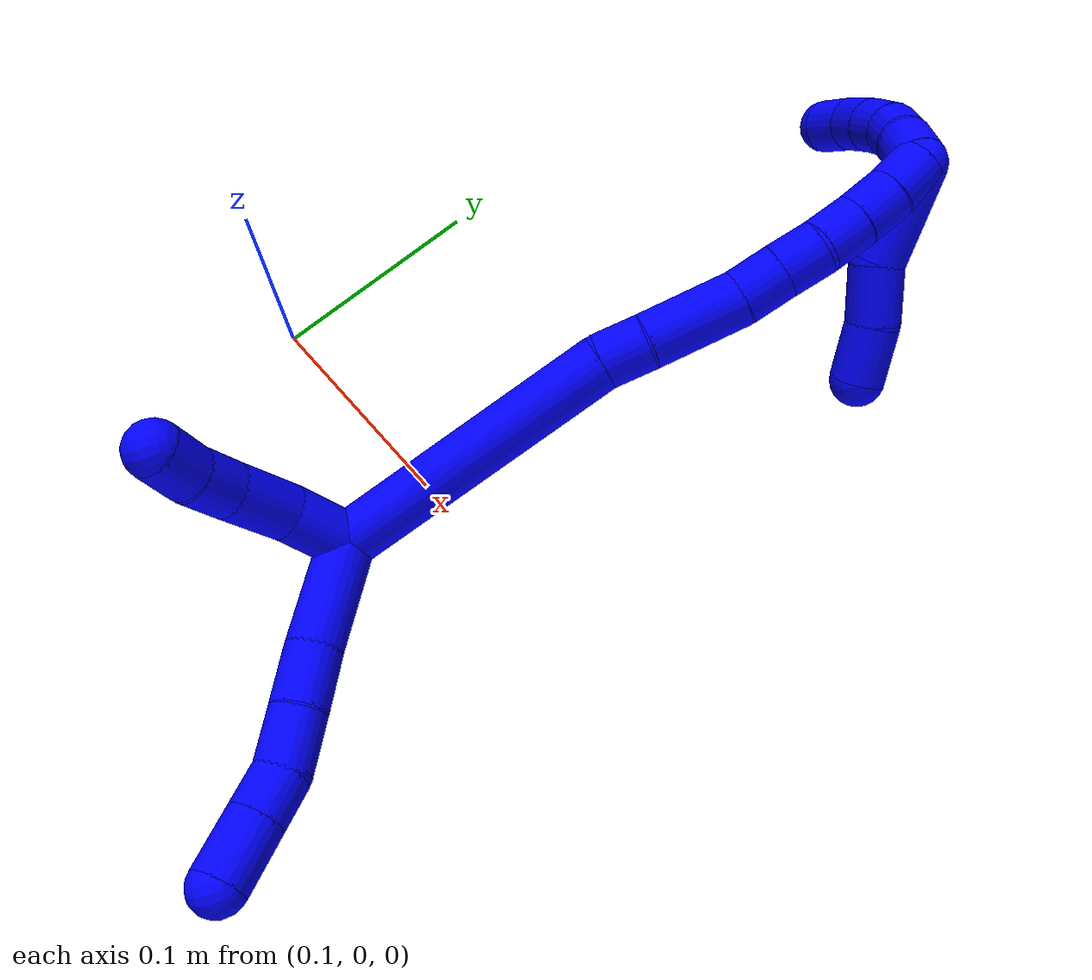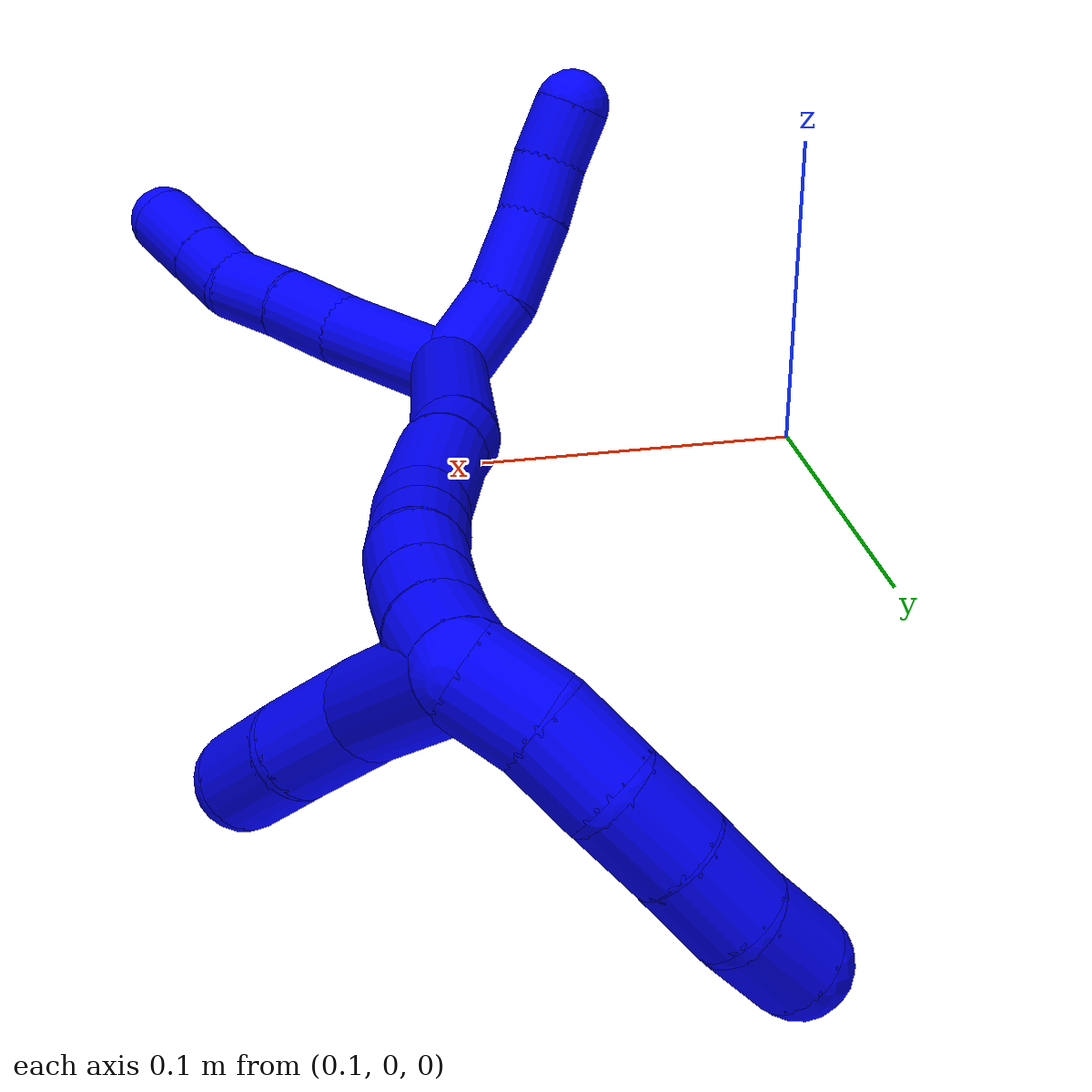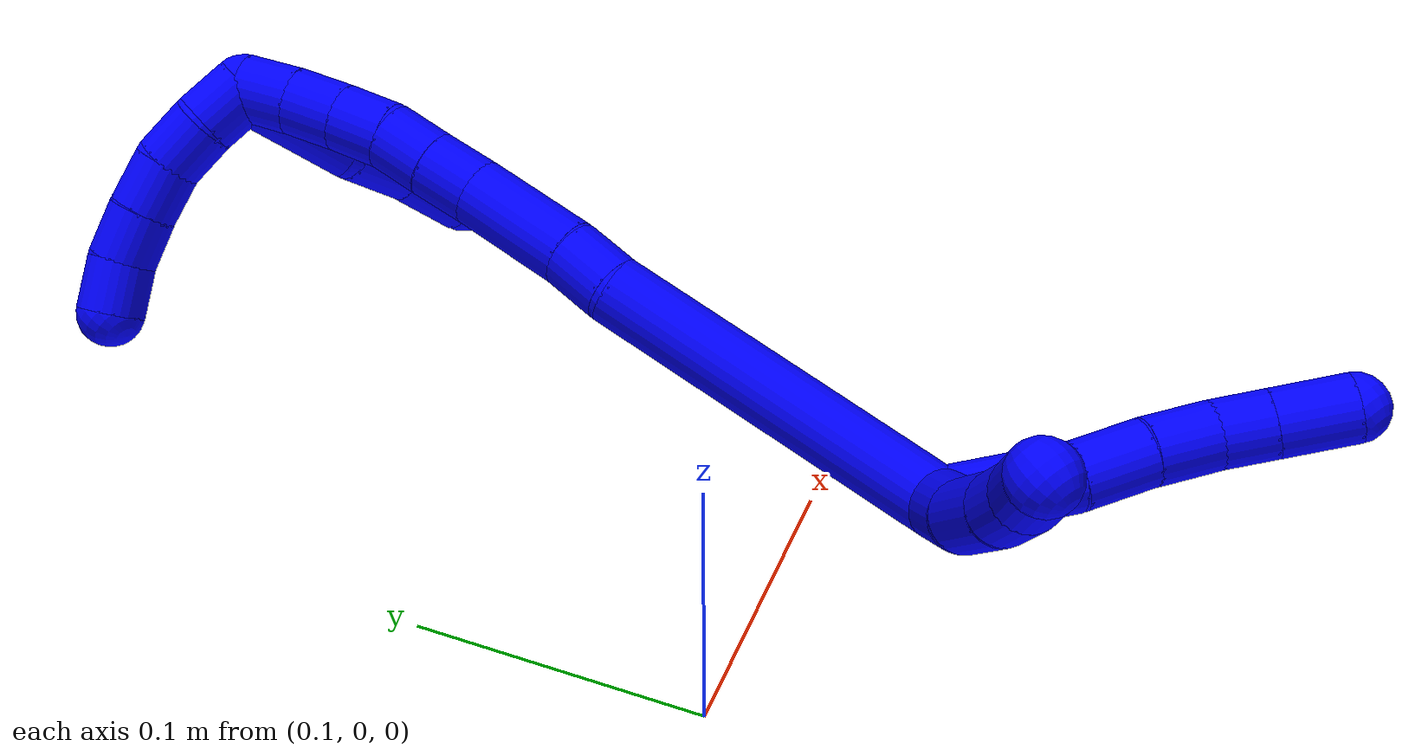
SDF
<sdf version="1.7">
 <world name="default">
  <model name="1">
   <static>0</static>
   <link name="1">
    <collision name="collision-cylinder-e_1_2_8">
     <pose>0.003321 -0.022284 -0.009219 1.96307 0.136866 0.204346</pose>
     <geometry><cylinder><radius>0.0125</radius><length>0.048686</length></cylinder></geometry>
     <surface>
      <friction><ode><mu>1.16</mu><mu2>1.16</mu2><slip1>0</slip1><slip2>0</slip2></ode></friction>
      <contact><ode><kp>1e+06</kp><kd>1</kd><max_vel>0</max_vel><min_depth>0.001</min_depth></ode></contact>
     </surface>
    </collision>
    <visual name="visual-cylinder-e_1_2_8">
     <pose>0.003321 -0.022284 -0.009219 1.96307 0.136866 0.204346</pose>
     <geometry><cylinder><radius>0.0125</radius><length>0.048686</length></cylinder></geometry>
     <material><ambient>0 0 1 1</ambient></material>
    </visual>
    <collision name="collision-cylinder-e_2_8_9">
     <pose>0.007488 -0.057507 -0.022175 1.85198 0.06267 0.083312</pose>
     <geometry><cylinder><radius>0.0125</radius><length>0.026989</length></cylinder></geometry>
     <surface>
      <friction><ode><mu>1.16</mu><mu2>1.16</mu2><slip1>0</slip1><slip2>0</slip2></ode></friction>
      <contact><ode><kp>1e+06</kp><kd>1</kd><max_vel>0</max_vel><min_depth>0.001</min_depth></ode></contact>
     </surface>
    </collision>
    <visual name="visual-cylinder-e_2_8_9">
     <pose>0.007488 -0.057507 -0.022175 1.85198 0.06267 0.083312</pose>
     <geometry><cylinder><radius>0.0125</radius><length>0.026989</length></cylinder></geometry>
     <material><ambient>0 0 1 1</ambient></material>
    </visual>
    <collision name="collision-cylinder-e_3_9_10">
     <pose>0.009963 -0.082434 -0.030092 1.90625 0.127661 0.179464</pose>
     <geometry><cylinder><radius>0.0125</radius><length>0.025601</length></cylinder></geometry>
     <surface>
      <friction><ode><mu>1.16</mu><mu2>1.16</mu2><slip1>0</slip1><slip2>0</slip2></ode></friction>
      <contact><ode><kp>1e+06</kp><kd>1</kd><max_vel>0</max_vel><min_depth>0.001</min_depth></ode></contact>
     </surface>
    </collision>
    <visual name="visual-cylinder-e_3_9_10">
     <pose>0.009963 -0.082434 -0.030092 1.90625 0.127661 0.179464</pose>
     <geometry><cylinder><radius>0.0125</radius><length>0.025601</length></cylinder></geometry>
     <material><ambient>0 0 1 1</ambient></material>
    </visual>
    <collision name="collision-cylinder-e_4_10_11">
     <pose>0.010424 -0.103335 -0.03902 2.06032 -0.115226 -0.191573</pose>
     <geometry><cylinder><radius>0.0125</radius><length>0.020332</length></cylinder></geometry>
     <surface>
      <friction><ode><mu>1.16</mu><mu2>1.16</mu2><slip1>0</slip1><slip2>0</slip2></ode></friction>
      <contact><ode><kp>1e+06</kp><kd>1</kd><max_vel>0</max_vel><min_depth>0.001</min_depth></ode></contact>
     </surface>
    </collision>
    <visual name="visual-cylinder-e_4_10_11">
     <pose>0.010424 -0.103335 -0.03902 2.06032 -0.115226 -0.191573</pose>
     <geometry><cylinder><radius>0.0125</radius><length>0.020332</length></cylinder></geometry>
     <material><ambient>0 0 1 1</ambient></material>
    </visual>
    <collision name="collision-cylinder-e_5_11_6">
     <pose>0.007626 -0.124697 -0.050394 2.05987 -0.114974 -0.191059</pose>
     <geometry><cylinder><radius>0.0125</radius><length>0.028392</length></cylinder></geometry>
     <surface>
      <friction><ode><mu>1.16</mu><mu2>1.16</mu2><slip1>0</slip1><slip2>0</slip2></ode></friction>
      <contact><ode><kp>1e+06</kp><kd>1</kd><max_vel>0</max_vel><min_depth>0.001</min_depth></ode></contact>
     </surface>
    </collision>
    <visual name="visual-cylinder-e_5_11_6">
     <pose>0.007626 -0.124697 -0.050394 2.05987 -0.114974 -0.191059</pose>
     <geometry><cylinder><radius>0.0125</radius><length>0.028392</length></cylinder></geometry>
     <material><ambient>0 0 1 1</ambient></material>
    </visual>
    <collision name="collision-cylinder-e_1_2_12">
     <pose>-0.012737 0.002031 -0.007624 -2.88125 -1.01618 2.67979</pose>
     <geometry><cylinder><radius>0.0125</radius><length>0.029965</length></cylinder></geometry>
     <surface>
      <friction><ode><mu>1.16</mu><mu2>1.16</mu2><slip1>0</slip1><slip2>0</slip2></ode></friction>
      <contact><ode><kp>1e+06</kp><kd>1</kd><max_vel>0</max_vel><min_depth>0.001</min_depth></ode></contact>
     </surface>
    </collision>
    <visual name="visual-cylinder-e_1_2_12">
     <pose>-0.012737 0.002031 -0.007624 -2.88125 -1.01618 2.67979</pose>
     <geometry><cylinder><radius>0.0125</radius><length>0.029965</length></cylinder></geometry>
     <material><ambient>0 0 1 1</ambient></material>
    </visual>
    <collision name="collision-cylinder-e_2_12_13">
     <pose>-0.039075 0.002727 -0.021213 2.92137 -1.14842 -2.80307</pose>
     <geometry><cylinder><radius>0.0125</radius><length>0.029824</length></cylinder></geometry>
     <surface>
      <friction><ode><mu>1.16</mu><mu2>1.16</mu2><slip1>0</slip1><slip2>0</slip2></ode></friction>
      <contact><ode><kp>1e+06</kp><kd>1</kd><max_vel>0</max_vel><min_depth>0.001</min_depth></ode></contact>
     </surface>
    </collision>
    <visual name="visual-cylinder-e_2_12_13">
     <pose>-0.039075 0.002727 -0.021213 2.92137 -1.14842 -2.80307</pose>
     <geometry><cylinder><radius>0.0125</radius><length>0.029824</length></cylinder></geometry>
     <material><ambient>0 0 1 1</ambient></material>
    </visual>
    <collision name="collision-cylinder-e_3_13_14">
     <pose>-0.062122 -0.000179 -0.030127 2.65221 -1.2309 -2.46265</pose>
     <geometry><cylinder><radius>0.0125</radius><length>0.020039</length></cylinder></geometry>
     <surface>
      <friction><ode><mu>1.16</mu><mu2>1.16</mu2><slip1>0</slip1><slip2>0</slip2></ode></friction>
      <contact><ode><kp>1e+06</kp><kd>1</kd><max_vel>0</max_vel><min_depth>0.001</min_depth></ode></contact>
     </surface>
    </collision>
    <visual name="visual-cylinder-e_3_13_14">
     <pose>-0.062122 -0.000179 -0.030127 2.65221 -1.2309 -2.46265</pose>
     <geometry><cylinder><radius>0.0125</radius><length>0.020039</length></cylinder></geometry>
     <material><ambient>0 0 1 1</ambient></material>
    </visual>
    <collision name="collision-cylinder-e_4_14_5">
     <pose>-0.081463 -0.001985 -0.03502 3.02087 -1.37535 -2.99471</pose>
     <geometry><cylinder><radius>0.0125</radius><length>0.020173</length></cylinder></geometry>
     <surface>
      <friction><ode><mu>1.16</mu><mu2>1.16</mu2><slip1>0</slip1><slip2>0</slip2></ode></friction>
      <contact><ode><kp>1e+06</kp><kd>1</kd><max_vel>0</max_vel><min_depth>0.001</min_depth></ode></contact>
     </surface>
    </collision>
    <visual name="visual-cylinder-e_4_14_5">
     <pose>-0.081463 -0.001985 -0.03502 3.02087 -1.37535 -2.99471</pose>
     <geometry><cylinder><radius>0.0125</radius><length>0.020173</length></cylinder></geometry>
     <material><ambient>0 0 1 1</ambient></material>
    </visual>
    <collision name="collision-cylinder-e_1_2_15">
     <pose>-0.007327 0.021881 0.063089 -0.333838 -0.109282 0.01843</pose>
     <geometry><cylinder><radius>0.0125</radius><length>0.134353</length></cylinder></geometry>
     <surface>
      <friction><ode><mu>1.16</mu><mu2>1.16</mu2><slip1>0</slip1><slip2>0</slip2></ode></friction>
      <contact><ode><kp>1e+06</kp><kd>1</kd><max_vel>0</max_vel><min_depth>0.001</min_depth></ode></contact>
     </surface>
    </collision>
    <visual name="visual-cylinder-e_1_2_15">
     <pose>-0.007327 0.021881 0.063089 -0.333838 -0.109282 0.01843</pose>
     <geometry><cylinder><radius>0.0125</radius><length>0.134353</length></cylinder></geometry>
     <material><ambient>0 0 1 1</ambient></material>
    </visual>
    <collision name="collision-cylinder-e_2_15_16">
     <pose>-0.01451 0.04567 0.136553 -0.181977 0.01361 -0.001242</pose>
     <geometry><cylinder><radius>0.0125</radius><length>0.021098</length></cylinder></geometry>
     <surface>
      <friction><ode><mu>1.16</mu><mu2>1.16</mu2><slip1>0</slip1><slip2>0</slip2></ode></friction>
      <contact><ode><kp>1e+06</kp><kd>1</kd><max_vel>0</max_vel><min_depth>0.001</min_depth></ode></contact>
     </surface>
    </collision>
    <visual name="visual-cylinder-e_2_15_16">
     <pose>-0.01451 0.04567 0.136553 -0.181977 0.01361 -0.001242</pose>
     <geometry><cylinder><radius>0.0125</radius><length>0.021098</length></cylinder></geometry>
     <material><ambient>0 0 1 1</ambient></material>
    </visual>
    <collision name="collision-cylinder-e_3_16_17">
     <pose>-0.012816 0.053267 0.167988 -0.26378 0.070945 -0.009415</pose>
     <geometry><cylinder><radius>0.0125</radius><length>0.043742</length></cylinder></geometry>
     <surface>
      <friction><ode><mu>1.16</mu><mu2>1.16</mu2><slip1>0</slip1><slip2>0</slip2></ode></friction>
      <contact><ode><kp>1e+06</kp><kd>1</kd><max_vel>0</max_vel><min_depth>0.001</min_depth></ode></contact>
     </surface>
    </collision>
    <visual name="visual-cylinder-e_3_16_17">
     <pose>-0.012816 0.053267 0.167988 -0.26378 0.070945 -0.009415</pose>
     <geometry><cylinder><radius>0.0125</radius><length>0.043742</length></cylinder></geometry>
     <material><ambient>0 0 1 1</ambient></material>
    </visual>
    <collision name="collision-cylinder-e_4_17_18">
     <pose>-0.011803 0.062395 0.198822 -0.338418 -0.051885 0.008866</pose>
     <geometry><cylinder><radius>0.0125</radius><length>0.020748</length></cylinder></geometry>
     <surface>
      <friction><ode><mu>1.16</mu><mu2>1.16</mu2><slip1>0</slip1><slip2>0</slip2></ode></friction>
      <contact><ode><kp>1e+06</kp><kd>1</kd><max_vel>0</max_vel><min_depth>0.001</min_depth></ode></contact>
     </surface>
    </collision>
    <visual name="visual-cylinder-e_4_17_18">
     <pose>-0.011803 0.062395 0.198822 -0.338418 -0.051885 0.008866</pose>
     <geometry><cylinder><radius>0.0125</radius><length>0.020748</length></cylinder></geometry>
     <material><ambient>0 0 1 1</ambient></material>
    </visual>
    <collision name="collision-cylinder-e_5_18_19">
     <pose>-0.01274 0.068892 0.218113 -0.3108 -0.039825 0.00624</pose>
     <geometry><cylinder><radius>0.0125</radius><length>0.02001</length></cylinder></geometry>
     <surface>
      <friction><ode><mu>1.16</mu><mu2>1.16</mu2><slip1>0</slip1><slip2>0</slip2></ode></friction>
      <contact><ode><kp>1e+06</kp><kd>1</kd><max_vel>0</max_vel><min_depth>0.001</min_depth></ode></contact>
     </surface>
    </collision>
    <visual name="visual-cylinder-e_5_18_19">
     <pose>-0.01274 0.068892 0.218113 -0.3108 -0.039825 0.00624</pose>
     <geometry><cylinder><radius>0.0125</radius><length>0.02001</length></cylinder></geometry>
     <material><ambient>0 0 1 1</ambient></material>
    </visual>
    <collision name="collision-cylinder-e_6_19_20">
     <pose>-0.012703 0.076583 0.236493 -0.481781 0.043492 -0.010686</pose>
     <geometry><cylinder><radius>0.0125</radius><length>0.02002</length></cylinder></geometry>
     <surface>
      <friction><ode><mu>1.16</mu><mu2>1.16</mu2><slip1>0</slip1><slip2>0</slip2></ode></friction>
      <contact><ode><kp>1e+06</kp><kd>1</kd><max_vel>0</max_vel><min_depth>0.001</min_depth></ode></contact>
     </surface>
    </collision>
    <visual name="visual-cylinder-e_6_19_20">
     <pose>-0.012703 0.076583 0.236493 -0.481781 0.043492 -0.010686</pose>
     <geometry><cylinder><radius>0.0125</radius><length>0.02002</length></cylinder></geometry>
     <material><ambient>0 0 1 1</ambient></material>
    </visual>
    <collision name="collision-cylinder-e_7_20_21">
     <pose>-0.012087 0.086288 0.253976 -0.531776 0.018073 -0.004922</pose>
     <geometry><cylinder><radius>0.0125</radius><length>0.020005</length></cylinder></geometry>
     <surface>
      <friction><ode><mu>1.16</mu><mu2>1.16</mu2><slip1>0</slip1><slip2>0</slip2></ode></friction>
      <contact><ode><kp>1e+06</kp><kd>1</kd><max_vel>0</max_vel><min_depth>0.001</min_depth></ode></contact>
     </surface>
    </collision>
    <visual name="visual-cylinder-e_7_20_21">
     <pose>-0.012087 0.086288 0.253976 -0.531776 0.018073 -0.004922</pose>
     <geometry><cylinder><radius>0.0125</radius><length>0.020005</length></cylinder></geometry>
     <material><ambient>0 0 1 1</ambient></material>
    </visual>
    <collision name="collision-cylinder-e_8_21_1">
     <pose>-0.012096 0.097262 0.270679 -0.630682 -0.018991 0.006195</pose>
     <geometry><cylinder><radius>0.0125</radius><length>0.020022</length></cylinder></geometry>
     <surface>
      <friction><ode><mu>1.16</mu><mu2>1.16</mu2><slip1>0</slip1><slip2>0</slip2></ode></friction>
      <contact><ode><kp>1e+06</kp><kd>1</kd><max_vel>0</max_vel><min_depth>0.001</min_depth></ode></contact>
     </surface>
    </collision>
    <visual name="visual-cylinder-e_8_21_1">
     <pose>-0.012096 0.097262 0.270679 -0.630682 -0.018991 0.006195</pose>
     <geometry><cylinder><radius>0.0125</radius><length>0.020022</length></cylinder></geometry>
     <material><ambient>0 0 1 1</ambient></material>
    </visual>
    <collision name="collision-cylinder-e_1_1_22">
     <pose>-0.010475 0.112966 0.277966 -1.65198 0.182097 -0.197419</pose>
     <geometry><cylinder><radius>0.0125</radius><length>0.02</length></cylinder></geometry>
     <surface>
      <friction><ode><mu>1.16</mu><mu2>1.16</mu2><slip1>0</slip1><slip2>0</slip2></ode></friction>
      <contact><ode><kp>1e+06</kp><kd>1</kd><max_vel>0</max_vel><min_depth>0.001</min_depth></ode></contact>
     </surface>
    </collision>
    <visual name="visual-cylinder-e_1_1_22">
     <pose>-0.010475 0.112966 0.277966 -1.65198 0.182097 -0.197419</pose>
     <geometry><cylinder><radius>0.0125</radius><length>0.02</length></cylinder></geometry>
     <material><ambient>0 0 1 1</ambient></material>
    </visual>
    <collision name="collision-cylinder-e_2_22_23">
     <pose>-0.004986 0.132037 0.27642 -1.65132 0.376643 -0.407425</pose>
     <geometry><cylinder><radius>0.0125</radius><length>0.02</length></cylinder></geometry>
     <surface>
      <friction><ode><mu>1.16</mu><mu2>1.16</mu2><slip1>0</slip1><slip2>0</slip2></ode></friction>
      <contact><ode><kp>1e+06</kp><kd>1</kd><max_vel>0</max_vel><min_depth>0.001</min_depth></ode></contact>
     </surface>
    </collision>
    <visual name="visual-cylinder-e_2_22_23">
     <pose>-0.004986 0.132037 0.27642 -1.65132 0.376643 -0.407425</pose>
     <geometry><cylinder><radius>0.0125</radius><length>0.02</length></cylinder></geometry>
     <material><ambient>0 0 1 1</ambient></material>
    </visual>
    <collision name="collision-cylinder-e_3_23_24">
     <pose>0.002941 0.149793 0.272522 -1.92623 0.438909 -0.620699</pose>
     <geometry><cylinder><radius>0.0125</radius><length>0.02</length></cylinder></geometry>
     <surface>
      <friction><ode><mu>1.16</mu><mu2>1.16</mu2><slip1>0</slip1><slip2>0</slip2></ode></friction>
      <contact><ode><kp>1e+06</kp><kd>1</kd><max_vel>0</max_vel><min_depth>0.001</min_depth></ode></contact>
     </surface>
    </collision>
    <visual name="visual-cylinder-e_3_23_24">
     <pose>0.002941 0.149793 0.272522 -1.92623 0.438909 -0.620699</pose>
     <geometry><cylinder><radius>0.0125</radius><length>0.02</length></cylinder></geometry>
     <material><ambient>0 0 1 1</ambient></material>
    </visual>
    <collision name="collision-cylinder-e_4_24_25">
     <pose>0.011891 0.166309 0.265708 -1.99881 0.489361 -0.740845</pose>
     <geometry><cylinder><radius>0.0125</radius><length>0.02</length></cylinder></geometry>
     <surface>
      <friction><ode><mu>1.16</mu><mu2>1.16</mu2><slip1>0</slip1><slip2>0</slip2></ode></friction>
      <contact><ode><kp>1e+06</kp><kd>1</kd><max_vel>0</max_vel><min_depth>0.001</min_depth></ode></contact>
     </surface>
    </collision>
    <visual name="visual-cylinder-e_4_24_25">
     <pose>0.011891 0.166309 0.265708 -1.99881 0.489361 -0.740845</pose>
     <geometry><cylinder><radius>0.0125</radius><length>0.02</length></cylinder></geometry>
     <material><ambient>0 0 1 1</ambient></material>
    </visual>
    <collision name="collision-cylinder-e_5_25_4">
     <pose>0.020836 0.181393 0.256367 -2.24853 0.438356 -0.870937</pose>
     <geometry><cylinder><radius>0.0125</radius><length>0.02</length></cylinder></geometry>
     <surface>
      <friction><ode><mu>1.16</mu><mu2>1.16</mu2><slip1>0</slip1><slip2>0</slip2></ode></friction>
      <contact><ode><kp>1e+06</kp><kd>1</kd><max_vel>0</max_vel><min_depth>0.001</min_depth></ode></contact>
     </surface>
    </collision>
    <visual name="visual-cylinder-e_5_25_4">
     <pose>0.020836 0.181393 0.256367 -2.24853 0.438356 -0.870937</pose>
     <geometry><cylinder><radius>0.0125</radius><length>0.02</length></cylinder></geometry>
     <material><ambient>0 0 1 1</ambient></material>
    </visual>
    <collision name="collision-cylinder-e_1_1_26">
     <pose>0.001706 0.091827 0.264605 2.46638 0.657093 1.54148</pose>
     <geometry><cylinder><radius>0.0125</radius><length>0.045816</length></cylinder></geometry>
     <surface>
      <friction><ode><mu>1.16</mu><mu2>1.16</mu2><slip1>0</slip1><slip2>0</slip2></ode></friction>
      <contact><ode><kp>1e+06</kp><kd>1</kd><max_vel>0</max_vel><min_depth>0.001</min_depth></ode></contact>
     </surface>
    </collision>
    <visual name="visual-cylinder-e_1_1_26">
     <pose>0.001706 0.091827 0.264605 2.46638 0.657093 1.54148</pose>
     <geometry><cylinder><radius>0.0125</radius><length>0.045816</length></cylinder></geometry>
     <material><ambient>0 0 1 1</ambient></material>
    </visual>
    <collision name="collision-cylinder-e_2_26_27">
     <pose>0.02609 0.072752 0.246146 2.0781 0.865198 1.33102</pose>
     <geometry><cylinder><radius>0.0125</radius><length>0.027302</length></cylinder></geometry>
     <surface>
      <friction><ode><mu>1.16</mu><mu2>1.16</mu2><slip1>0</slip1><slip2>0</slip2></ode></friction>
      <contact><ode><kp>1e+06</kp><kd>1</kd><max_vel>0</max_vel><min_depth>0.001</min_depth></ode></contact>
     </surface>
    </collision>
    <visual name="visual-cylinder-e_2_26_27">
     <pose>0.02609 0.072752 0.246146 2.0781 0.865198 1.33102</pose>
     <geometry><cylinder><radius>0.0125</radius><length>0.027302</length></cylinder></geometry>
     <material><ambient>0 0 1 1</ambient></material>
    </visual>
    <collision name="collision-cylinder-e_3_27_3">
     <pose>0.046072 0.058376 0.235165 2.35937 0.794435 1.58801</pose>
     <geometry><cylinder><radius>0.0125</radius><length>0.026882</length></cylinder></geometry>
     <surface>
      <friction><ode><mu>1.16</mu><mu2>1.16</mu2><slip1>0</slip1><slip2>0</slip2></ode></friction>
      <contact><ode><kp>1e+06</kp><kd>1</kd><max_vel>0</max_vel><min_depth>0.001</min_depth></ode></contact>
     </surface>
    </collision>
    <visual name="visual-cylinder-e_3_27_3">
     <pose>0.046072 0.058376 0.235165 2.35937 0.794435 1.58801</pose>
     <geometry><cylinder><radius>0.0125</radius><length>0.026882</length></cylinder></geometry>
     <material><ambient>0 0 1 1</ambient></material>
    </visual>
    <collision name="collision-sphere-3">
     <pose>0.055661 0.051738 0.228484 0 -0 0</pose>
     <geometry><sphere><radius>0.0125</radius></sphere></geometry>
     <surface>
      <friction><ode><mu>1.16</mu><mu2>1.16</mu2><slip1>0</slip1><slip2>0</slip2></ode></friction>
      <contact><ode><kp>1e+06</kp><kd>1</kd><max_vel>0</max_vel><min_depth>0.001</min_depth></ode></contact>
     </surface>
    </collision>
    <visual name="visual-sphere-3">
     <pose>0.055661 0.051738 0.228484 0 -0 0</pose>
     <geometry><sphere><radius>0.0125</radius></sphere></geometry>
     <material><ambient>0 0 1 1</ambient></material>
    </visual>
    <collision name="collision-sphere-27">
     <pose>0.036482 0.065014 0.241846 0 -0 0</pose>
     <geometry><sphere><radius>0.0125</radius></sphere></geometry>
     <surface>
      <friction><ode><mu>1.16</mu><mu2>1.16</mu2><slip1>0</slip1><slip2>0</slip2></ode></friction>
      <contact><ode><kp>1e+06</kp><kd>1</kd><max_vel>0</max_vel><min_depth>0.001</min_depth></ode></contact>
     </surface>
    </collision>
    <visual name="visual-sphere-27">
     <pose>0.036482 0.065014 0.241846 0 -0 0</pose>
     <geometry><sphere><radius>0.0125</radius></sphere></geometry>
     <material><ambient>0 0 1 1</ambient></material>
    </visual>
    <collision name="collision-sphere-26">
     <pose>0.015699 0.080489 0.250447 0 -0 0</pose>
     <geometry><sphere><radius>0.0125</radius></sphere></geometry>
     <surface>
      <friction><ode><mu>1.16</mu><mu2>1.16</mu2><slip1>0</slip1><slip2>0</slip2></ode></friction>
      <contact><ode><kp>1e+06</kp><kd>1</kd><max_vel>0</max_vel><min_depth>0.001</min_depth></ode></contact>
     </surface>
    </collision>
    <visual name="visual-sphere-26">
     <pose>0.015699 0.080489 0.250447 0 -0 0</pose>
     <geometry><sphere><radius>0.0125</radius></sphere></geometry>
     <material><ambient>0 0 1 1</ambient></material>
    </visual>
    <collision name="collision-sphere-4">
     <pose>0.025081 0.188446 0.25069 0 -0 0</pose>
     <geometry><sphere><radius>0.0125</radius></sphere></geometry>
     <surface>
      <friction><ode><mu>1.16</mu><mu2>1.16</mu2><slip1>0</slip1><slip2>0</slip2></ode></friction>
      <contact><ode><kp>1e+06</kp><kd>1</kd><max_vel>0</max_vel><min_depth>0.001</min_depth></ode></contact>
     </surface>
    </collision>
    <visual name="visual-sphere-4">
     <pose>0.025081 0.188446 0.25069 0 -0 0</pose>
     <geometry><sphere><radius>0.0125</radius></sphere></geometry>
     <material><ambient>0 0 1 1</ambient></material>
    </visual>
    <collision name="collision-sphere-25">
     <pose>0.016592 0.174339 0.262045 0 -0 0</pose>
     <geometry><sphere><radius>0.0125</radius></sphere></geometry>
     <surface>
      <friction><ode><mu>1.16</mu><mu2>1.16</mu2><slip1>0</slip1><slip2>0</slip2></ode></friction>
      <contact><ode><kp>1e+06</kp><kd>1</kd><max_vel>0</max_vel><min_depth>0.001</min_depth></ode></contact>
     </surface>
    </collision>
    <visual name="visual-sphere-25">
     <pose>0.016592 0.174339 0.262045 0 -0 0</pose>
     <geometry><sphere><radius>0.0125</radius></sphere></geometry>
     <material><ambient>0 0 1 1</ambient></material>
    </visual>
    <collision name="collision-sphere-24">
     <pose>0.007191 0.158279 0.269372 0 -0 0</pose>
     <geometry><sphere><radius>0.0125</radius></sphere></geometry>
     <surface>
      <friction><ode><mu>1.16</mu><mu2>1.16</mu2><slip1>0</slip1><slip2>0</slip2></ode></friction>
      <contact><ode><kp>1e+06</kp><kd>1</kd><max_vel>0</max_vel><min_depth>0.001</min_depth></ode></contact>
     </surface>
    </collision>
    <visual name="visual-sphere-24">
     <pose>0.007191 0.158279 0.269372 0 -0 0</pose>
     <geometry><sphere><radius>0.0125</radius></sphere></geometry>
     <material><ambient>0 0 1 1</ambient></material>
    </visual>
    <collision name="collision-sphere-23">
     <pose>-0.001308 0.141306 0.275672 0 -0 0</pose>
     <geometry><sphere><radius>0.0125</radius></sphere></geometry>
     <surface>
      <friction><ode><mu>1.16</mu><mu2>1.16</mu2><slip1>0</slip1><slip2>0</slip2></ode></friction>
      <contact><ode><kp>1e+06</kp><kd>1</kd><max_vel>0</max_vel><min_depth>0.001</min_depth></ode></contact>
     </surface>
    </collision>
    <visual name="visual-sphere-23">
     <pose>-0.001308 0.141306 0.275672 0 -0 0</pose>
     <geometry><sphere><radius>0.0125</radius></sphere></geometry>
     <material><ambient>0 0 1 1</ambient></material>
    </visual>
    <collision name="collision-sphere-22">
     <pose>-0.008664 0.122769 0.277168 0 -0 0</pose>
     <geometry><sphere><radius>0.0125</radius></sphere></geometry>
     <surface>
      <friction><ode><mu>1.16</mu><mu2>1.16</mu2><slip1>0</slip1><slip2>0</slip2></ode></friction>
      <contact><ode><kp>1e+06</kp><kd>1</kd><max_vel>0</max_vel><min_depth>0.001</min_depth></ode></contact>
     </surface>
    </collision>
    <visual name="visual-sphere-22">
     <pose>-0.008664 0.122769 0.277168 0 -0 0</pose>
     <geometry><sphere><radius>0.0125</radius></sphere></geometry>
     <material><ambient>0 0 1 1</ambient></material>
    </visual>
    <collision name="collision-sphere-1">
     <pose>-0.012286 0.103164 0.278763 0 -0 0</pose>
     <geometry><sphere><radius>0.0125</radius></sphere></geometry>
     <surface>
      <friction><ode><mu>1.16</mu><mu2>1.16</mu2><slip1>0</slip1><slip2>0</slip2></ode></friction>
      <contact><ode><kp>1e+06</kp><kd>1</kd><max_vel>0</max_vel><min_depth>0.001</min_depth></ode></contact>
     </surface>
    </collision>
    <visual name="visual-sphere-1">
     <pose>-0.012286 0.103164 0.278763 0 -0 0</pose>
     <geometry><sphere><radius>0.0125</radius></sphere></geometry>
     <material><ambient>0 0 1 1</ambient></material>
    </visual>
    <collision name="collision-sphere-21">
     <pose>-0.011906 0.091359 0.262596 0 -0 0</pose>
     <geometry><sphere><radius>0.0125</radius></sphere></geometry>
     <surface>
      <friction><ode><mu>1.16</mu><mu2>1.16</mu2><slip1>0</slip1><slip2>0</slip2></ode></friction>
      <contact><ode><kp>1e+06</kp><kd>1</kd><max_vel>0</max_vel><min_depth>0.001</min_depth></ode></contact>
     </surface>
    </collision>
    <visual name="visual-sphere-21">
     <pose>-0.011906 0.091359 0.262596 0 -0 0</pose>
     <geometry><sphere><radius>0.0125</radius></sphere></geometry>
     <material><ambient>0 0 1 1</ambient></material>
    </visual>
    <collision name="collision-sphere-6">
     <pose>0.005998 -0.137146 -0.057019 0 -0 0</pose>
     <geometry><sphere><radius>0.0125</radius></sphere></geometry>
     <surface>
      <friction><ode><mu>1.16</mu><mu2>1.16</mu2><slip1>0</slip1><slip2>0</slip2></ode></friction>
      <contact><ode><kp>1e+06</kp><kd>1</kd><max_vel>0</max_vel><min_depth>0.001</min_depth></ode></contact>
     </surface>
    </collision>
    <visual name="visual-sphere-6">
     <pose>0.005998 -0.137146 -0.057019 0 -0 0</pose>
     <geometry><sphere><radius>0.0125</radius></sphere></geometry>
     <material><ambient>0 0 1 1</ambient></material>
    </visual>
    <collision name="collision-sphere-11">
     <pose>0.009255 -0.112248 -0.043769 0 -0 0</pose>
     <geometry><sphere><radius>0.0125</radius></sphere></geometry>
     <surface>
      <friction><ode><mu>1.16</mu><mu2>1.16</mu2><slip1>0</slip1><slip2>0</slip2></ode></friction>
      <contact><ode><kp>1e+06</kp><kd>1</kd><max_vel>0</max_vel><min_depth>0.001</min_depth></ode></contact>
     </surface>
    </collision>
    <visual name="visual-sphere-11">
     <pose>0.009255 -0.112248 -0.043769 0 -0 0</pose>
     <geometry><sphere><radius>0.0125</radius></sphere></geometry>
     <material><ambient>0 0 1 1</ambient></material>
    </visual>
    <collision name="collision-sphere-10">
     <pose>0.011592 -0.094423 -0.034272 0 -0 0</pose>
     <geometry><sphere><radius>0.0125</radius></sphere></geometry>
     <surface>
      <friction><ode><mu>1.16</mu><mu2>1.16</mu2><slip1>0</slip1><slip2>0</slip2></ode></friction>
      <contact><ode><kp>1e+06</kp><kd>1</kd><max_vel>0</max_vel><min_depth>0.001</min_depth></ode></contact>
     </surface>
    </collision>
    <visual name="visual-sphere-10">
     <pose>0.011592 -0.094423 -0.034272 0 -0 0</pose>
     <geometry><sphere><radius>0.0125</radius></sphere></geometry>
     <material><ambient>0 0 1 1</ambient></material>
    </visual>
    <collision name="collision-sphere-9">
     <pose>0.008333 -0.070445 -0.025913 0 -0 0</pose>
     <geometry><sphere><radius>0.0125</radius></sphere></geometry>
     <surface>
      <friction><ode><mu>1.16</mu><mu2>1.16</mu2><slip1>0</slip1><slip2>0</slip2></ode></friction>
      <contact><ode><kp>1e+06</kp><kd>1</kd><max_vel>0</max_vel><min_depth>0.001</min_depth></ode></contact>
     </surface>
    </collision>
    <visual name="visual-sphere-9">
     <pose>0.008333 -0.070445 -0.025913 0 -0 0</pose>
     <geometry><sphere><radius>0.0125</radius></sphere></geometry>
     <material><ambient>0 0 1 1</ambient></material>
    </visual>
    <collision name="collision-sphere-2">
     <geometry><sphere><radius>0.0125</radius></sphere></geometry>
     <surface>
      <friction><ode><mu>1.16</mu><mu2>1.16</mu2><slip1>0</slip1><slip2>0</slip2></ode></friction>
      <contact><ode><kp>1e+06</kp><kd>1</kd><max_vel>0</max_vel><min_depth>0.001</min_depth></ode></contact>
     </surface>
    </collision>
    <visual name="visual-sphere-2">
     <geometry><sphere><radius>0.0125</radius></sphere></geometry>
     <material><ambient>0 0 1 1</ambient></material>
    </visual>
    <collision name="collision-sphere-19">
     <pose>-0.013138 0.071949 0.227631 0 -0 0</pose>
     <geometry><sphere><radius>0.0125</radius></sphere></geometry>
     <surface>
      <friction><ode><mu>1.16</mu><mu2>1.16</mu2><slip1>0</slip1><slip2>0</slip2></ode></friction>
      <contact><ode><kp>1e+06</kp><kd>1</kd><max_vel>0</max_vel><min_depth>0.001</min_depth></ode></contact>
     </surface>
    </collision>
    <visual name="visual-sphere-19">
     <pose>-0.013138 0.071949 0.227631 0 -0 0</pose>
     <geometry><sphere><radius>0.0125</radius></sphere></geometry>
     <material><ambient>0 0 1 1</ambient></material>
    </visual>
    <collision name="collision-sphere-8">
     <pose>0.006643 -0.044568 -0.018438 0 -0 0</pose>
     <geometry><sphere><radius>0.0125</radius></sphere></geometry>
     <surface>
      <friction><ode><mu>1.16</mu><mu2>1.16</mu2><slip1>0</slip1><slip2>0</slip2></ode></friction>
      <contact><ode><kp>1e+06</kp><kd>1</kd><max_vel>0</max_vel><min_depth>0.001</min_depth></ode></contact>
     </surface>
    </collision>
    <visual name="visual-sphere-8">
     <pose>0.006643 -0.044568 -0.018438 0 -0 0</pose>
     <geometry><sphere><radius>0.0125</radius></sphere></geometry>
     <material><ambient>0 0 1 1</ambient></material>
    </visual>
    <collision name="collision-sphere-12">
     <pose>-0.025473 0.004062 -0.015248 0 -0 0</pose>
     <geometry><sphere><radius>0.0125</radius></sphere></geometry>
     <surface>
      <friction><ode><mu>1.16</mu><mu2>1.16</mu2><slip1>0</slip1><slip2>0</slip2></ode></friction>
      <contact><ode><kp>1e+06</kp><kd>1</kd><max_vel>0</max_vel><min_depth>0.001</min_depth></ode></contact>
     </surface>
    </collision>
    <visual name="visual-sphere-12">
     <pose>-0.025473 0.004062 -0.015248 0 -0 0</pose>
     <geometry><sphere><radius>0.0125</radius></sphere></geometry>
     <material><ambient>0 0 1 1</ambient></material>
    </visual>
    <collision name="collision-sphere-13">
     <pose>-0.052676 0.001391 -0.027179 0 -0 0</pose>
     <geometry><sphere><radius>0.0125</radius></sphere></geometry>
     <surface>
      <friction><ode><mu>1.16</mu><mu2>1.16</mu2><slip1>0</slip1><slip2>0</slip2></ode></friction>
      <contact><ode><kp>1e+06</kp><kd>1</kd><max_vel>0</max_vel><min_depth>0.001</min_depth></ode></contact>
     </surface>
    </collision>
    <visual name="visual-sphere-13">
     <pose>-0.052676 0.001391 -0.027179 0 -0 0</pose>
     <geometry><sphere><radius>0.0125</radius></sphere></geometry>
     <material><ambient>0 0 1 1</ambient></material>
    </visual>
    <collision name="collision-sphere-14">
     <pose>-0.071568 -0.001749 -0.033075 0 -0 0</pose>
     <geometry><sphere><radius>0.0125</radius></sphere></geometry>
     <surface>
      <friction><ode><mu>1.16</mu><mu2>1.16</mu2><slip1>0</slip1><slip2>0</slip2></ode></friction>
      <contact><ode><kp>1e+06</kp><kd>1</kd><max_vel>0</max_vel><min_depth>0.001</min_depth></ode></contact>
     </surface>
    </collision>
    <visual name="visual-sphere-14">
     <pose>-0.071568 -0.001749 -0.033075 0 -0 0</pose>
     <geometry><sphere><radius>0.0125</radius></sphere></geometry>
     <material><ambient>0 0 1 1</ambient></material>
    </visual>
    <collision name="collision-sphere-5">
     <pose>-0.091357 -0.002221 -0.036964 0 -0 0</pose>
     <geometry><sphere><radius>0.0125</radius></sphere></geometry>
     <surface>
      <friction><ode><mu>1.16</mu><mu2>1.16</mu2><slip1>0</slip1><slip2>0</slip2></ode></friction>
      <contact><ode><kp>1e+06</kp><kd>1</kd><max_vel>0</max_vel><min_depth>0.001</min_depth></ode></contact>
     </surface>
    </collision>
    <visual name="visual-sphere-5">
     <pose>-0.091357 -0.002221 -0.036964 0 -0 0</pose>
     <geometry><sphere><radius>0.0125</radius></sphere></geometry>
     <material><ambient>0 0 1 1</ambient></material>
    </visual>
    <collision name="collision-sphere-15">
     <pose>-0.014653 0.043761 0.126179 0 -0 0</pose>
     <geometry><sphere><radius>0.0125</radius></sphere></geometry>
     <surface>
      <friction><ode><mu>1.16</mu><mu2>1.16</mu2><slip1>0</slip1><slip2>0</slip2></ode></friction>
      <contact><ode><kp>1e+06</kp><kd>1</kd><max_vel>0</max_vel><min_depth>0.001</min_depth></ode></contact>
     </surface>
    </collision>
    <visual name="visual-sphere-15">
     <pose>-0.014653 0.043761 0.126179 0 -0 0</pose>
     <geometry><sphere><radius>0.0125</radius></sphere></geometry>
     <material><ambient>0 0 1 1</ambient></material>
    </visual>
    <collision name="collision-sphere-16">
     <pose>-0.014366 0.047579 0.146927 0 -0 0</pose>
     <geometry><sphere><radius>0.0125</radius></sphere></geometry>
     <surface>
      <friction><ode><mu>1.16</mu><mu2>1.16</mu2><slip1>0</slip1><slip2>0</slip2></ode></friction>
      <contact><ode><kp>1e+06</kp><kd>1</kd><max_vel>0</max_vel><min_depth>0.001</min_depth></ode></contact>
     </surface>
    </collision>
    <visual name="visual-sphere-16">
     <pose>-0.014366 0.047579 0.146927 0 -0 0</pose>
     <geometry><sphere><radius>0.0125</radius></sphere></geometry>
     <material><ambient>0 0 1 1</ambient></material>
    </visual>
    <collision name="collision-sphere-17">
     <pose>-0.011265 0.058955 0.189049 0 -0 0</pose>
     <geometry><sphere><radius>0.0125</radius></sphere></geometry>
     <surface>
      <friction><ode><mu>1.16</mu><mu2>1.16</mu2><slip1>0</slip1><slip2>0</slip2></ode></friction>
      <contact><ode><kp>1e+06</kp><kd>1</kd><max_vel>0</max_vel><min_depth>0.001</min_depth></ode></contact>
     </surface>
    </collision>
    <visual name="visual-sphere-17">
     <pose>-0.011265 0.058955 0.189049 0 -0 0</pose>
     <geometry><sphere><radius>0.0125</radius></sphere></geometry>
     <material><ambient>0 0 1 1</ambient></material>
    </visual>
    <collision name="collision-sphere-18">
     <pose>-0.012341 0.065834 0.208594 0 -0 0</pose>
     <geometry><sphere><radius>0.0125</radius></sphere></geometry>
     <surface>
      <friction><ode><mu>1.16</mu><mu2>1.16</mu2><slip1>0</slip1><slip2>0</slip2></ode></friction>
      <contact><ode><kp>1e+06</kp><kd>1</kd><max_vel>0</max_vel><min_depth>0.001</min_depth></ode></contact>
     </surface>
    </collision>
    <visual name="visual-sphere-18">
     <pose>-0.012341 0.065834 0.208594 0 -0 0</pose>
     <geometry><sphere><radius>0.0125</radius></sphere></geometry>
     <material><ambient>0 0 1 1</ambient></material>
    </visual>
    <collision name="collision-sphere-20">
     <pose>-0.012268 0.081217 0.245356 0 -0 0</pose>
     <geometry><sphere><radius>0.0125</radius></sphere></geometry>
     <surface>
      <friction><ode><mu>1.16</mu><mu2>1.16</mu2><slip1>0</slip1><slip2>0</slip2></ode></friction>
      <contact><ode><kp>1e+06</kp><kd>1</kd><max_vel>0</max_vel><min_depth>0.001</min_depth></ode></contact>
     </surface>
    </collision>
    <visual name="visual-sphere-20">
     <pose>-0.012268 0.081217 0.245356 0 -0 0</pose>
     <geometry><sphere><radius>0.0125</radius></sphere></geometry>
     <material><ambient>0 0 1 1</ambient></material>
    </visual>
    <inertial>
     <pose>-0.005392 0.035248 0.117816 0 -0 0</pose>
     <mass>0.75</mass>
     <inertia>
      <ixx>0.000261</ixx>
      <ixy>0</ixy>
      <ixz>0</ixz>
      <iyy>0.000234</iyy>
      <iyz>0</iyz>
      <izz>-2.7e-05</izz>
     </inertia>
    </inertial>
   </link>
   <pose>0.202658 -0.044261 0.01251 -0.735885 1.18404 0.262715</pose>
  </model>
 </world>
</sdf>
